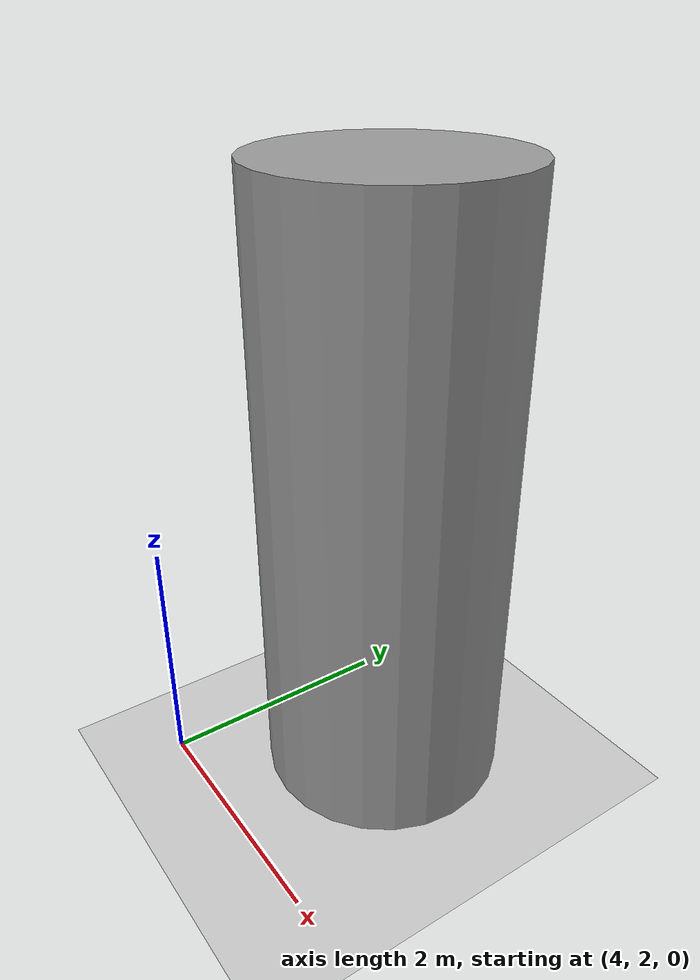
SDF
<?xml version="1.0" ?>
<sdf version="1.4">
  <world name="default">
    <!-- A global light source -->
    <include>
      <uri>model://sun</uri>
    </include>
    <!-- A ground plane -->
    <include>
      <uri>model://ground_plane</uri>
    </include>
    <!-- Cylinder -->
    <model name='unit_cylinder'>
      <pose frame=''>5 3.5 2.5 0 -0 0</pose>
      <static>true</static>
      <link name='link'>
        <inertial>
          <mass>1</mass>
          <inertia>
            <ixx>0.145833</ixx>
            <ixy>0</ixy>
            <ixz>0</ixz>
            <iyy>0.145833</iyy>
            <iyz>0</iyz>
            <izz>0.125</izz>
          </inertia>
          <pose>0 0 0 0 -0 0</pose>
        </inertial>
        <collision name='collision'>
          <geometry>
            <cylinder>
              <radius>1.0</radius>
              <length>5</length>
            </cylinder>
          </geometry>
          <max_contacts>10</max_contacts>
          <surface>
            <contact>
              <ode/>
            </contact>
            <bounce/>
            <friction>
              <torsional>
                <ode/>
              </torsional>
              <ode/>
            </friction>
          </surface>
        </collision>
        <visual name='visual'>
          <geometry>
            <cylinder>
              <radius>1.0</radius>
              <length>5</length>
            </cylinder>
          </geometry>
          <material>
            <script>
              <name>Gazebo/Grey</name>
              <uri>file://media/materials/scripts/gazebo.material</uri>
            </script>
          </material>
        </visual>
        <self_collide>0</self_collide>
        <kinematic>0</kinematic>
        <enable_wind>0</enable_wind>
      </link>
    </model>
  </world>
</sdf>
